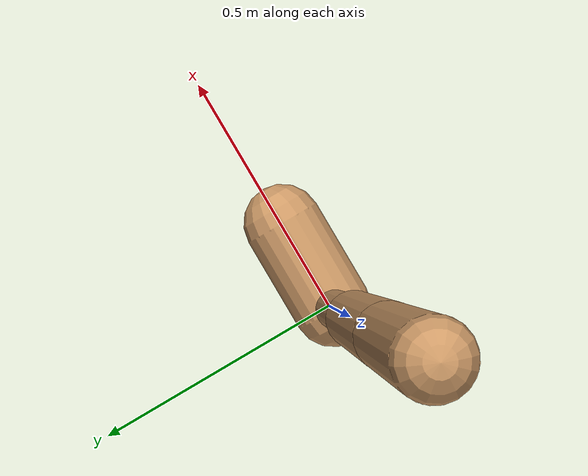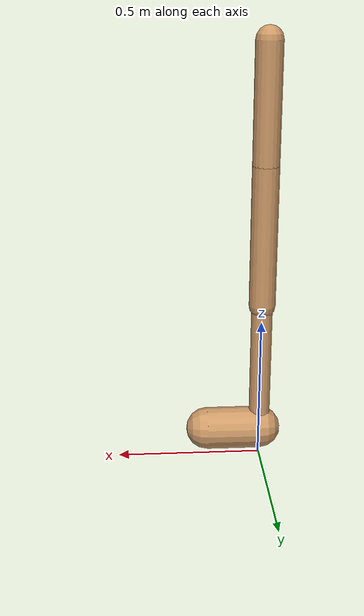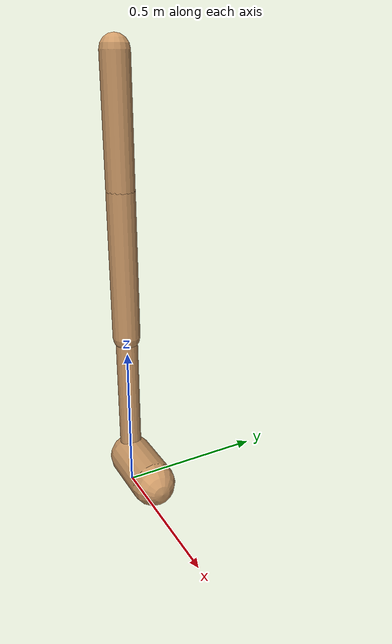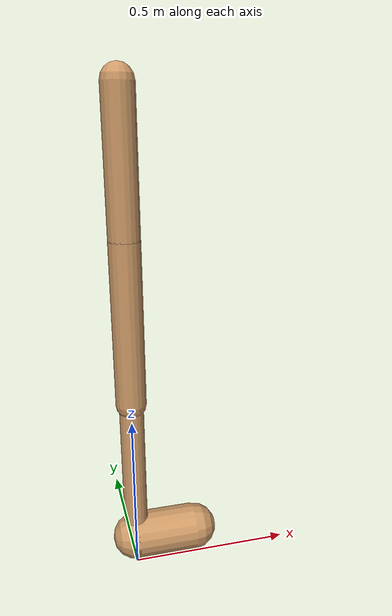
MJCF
<mujoco model="walker2d">
  <compiler angle="degree" coordinate="global" inertiafromgeom="true" />
  <default>
    <joint armature="0.01" damping=".1" limited="true" />
    <geom conaffinity="0" condim="3" contype="1" density="1000" friction="0.8 .1 .1" rgba="0.8 0.6 .4 1" />
  </default>
  <option integrator="RK4" timestep="0.002" />
  <worldbody>

    <body name="torso" pos="0 0 0.07163649551075364">
      <joint armature="0" axis="1 0 0" damping="0" limited="false" name="ignorex" pos="0 0 0" stiffness="0" type="slide" />
      <joint armature="0" axis="0 0 1" damping="0" limited="false" name="ignorez" pos="0 0 0" ref="1.25" stiffness="0" type="slide" />
      <joint armature="0" axis="0 1 0" damping="0" limited="false" name="ignorey" pos="0 0 0" stiffness="0" type="hinge" />
      <geom fromto="0 0 1.45 0 0 1.05" name="torso_geom" size="0.045524523544284115" type="capsule" />
      <body name="thigh">
        <joint axis="0 -1 0" name="thigh_joint" pos="0 0 1.05" range="-150 0" type="hinge" />
        <geom fromto="0.0 0.0 1.05 0.0 0.0 0.5660669231791167" name="thigh_geom" size="0.04579660436454776" type="capsule" />
        <body name="leg" pos="0.0 0.0 -0.03393307682088331">
          <joint axis="0 -1 0" name="leg_joint" pos="0 0 0.6" range="-150 0" type="hinge" />
          <geom fromto="0.0 0.0 0.6 0.0 0.0 0.06229658131012967" name="leg_geom" size="0.0366372834916382" type="capsule" />
          <body name="foot" pos="0.0 0.0 -0.03770341868987034">
            <joint axis="0 -1 0" name="foot_joint" pos="0 0 0.1" range="-45 45" type="hinge" />
            <geom fromto="0.0 0.0 0.1 0.18597988616927172 0.0 0.1" name="foot_geom" size="0.0737066648117298" type="capsule" />
          </body>
        </body>
      </body>

      <body name="thigh_left">
        <joint axis="0 -1 0" name="thigh_left_joint" pos="0 0 1.05" range="-150 0" type="hinge" />
        <geom fromto="0.0 0.0 1.05 0.0 0.0 0.5660669231791167" name="thigh_left_geom" rgba=".7 .3 .6 1" size="0.04579660436454776" type="capsule" />
        <body name="leg_left" pos="0.0 0.0 -0.03393307682088331">
          <joint axis="0 -1 0" name="leg_left_joint" pos="0 0 0.6" range="-150 0" type="hinge" />
          <geom fromto="0.0 0.0 0.6 0.0 0.0 0.06229658131012967" name="leg_left_geom" rgba=".7 .3 .6 1" size="0.0366372834916382" type="capsule" />
          <body name="foot_left" pos="0.0 0.0 -0.03770341868987034">
            <joint axis="0 -1 0" name="foot_left_joint" pos="0 0 0.1" range="-45 45" type="hinge" />
            <geom fromto="0.0 0.0 0.1 0.18597988616927172 0.0 0.1" name="foot_left_geom" rgba=".7 .3 .6 1" size="0.0737066648117298" type="capsule" />
          </body>
        </body>
      </body>
    </body>
  </worldbody>
  <actuator>

    <motor ctrllimited="true" ctrlrange="-1.0 1.0" gear="100" joint="thigh_joint" />
    <motor ctrllimited="true" ctrlrange="-1.0 1.0" gear="100" joint="leg_joint" />
    <motor ctrllimited="true" ctrlrange="-1.0 1.0" gear="100" joint="foot_joint" />
    <motor ctrllimited="true" ctrlrange="-1.0 1.0" gear="100" joint="thigh_left_joint" />
    <motor ctrllimited="true" ctrlrange="-1.0 1.0" gear="100" joint="leg_left_joint" />
    <motor ctrllimited="true" ctrlrange="-1.0 1.0" gear="100" joint="foot_left_joint" />

  </actuator>
</mujoco>
